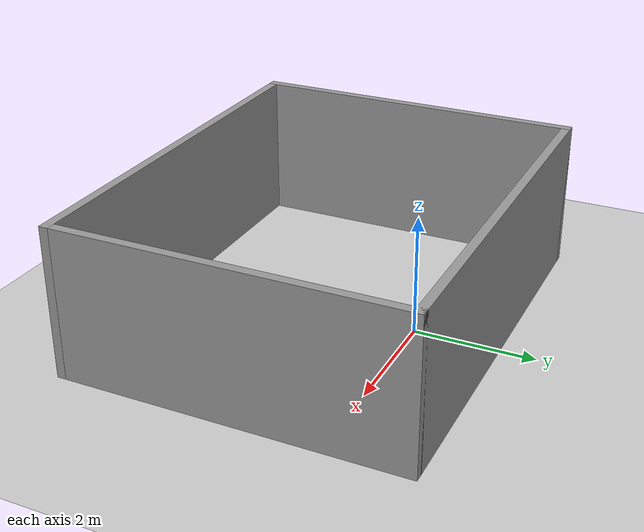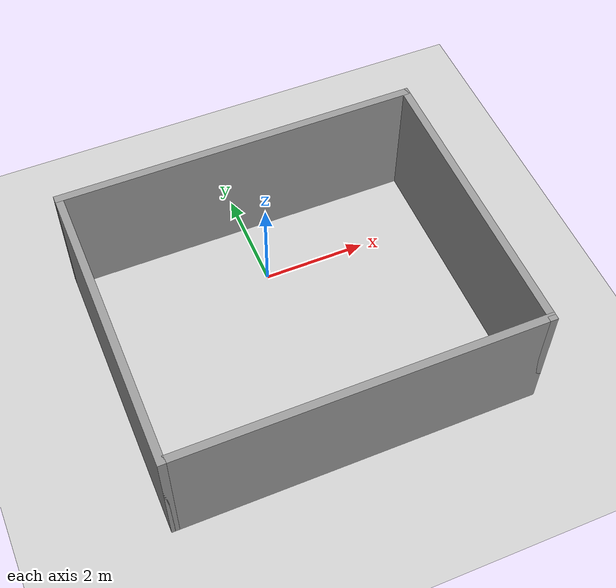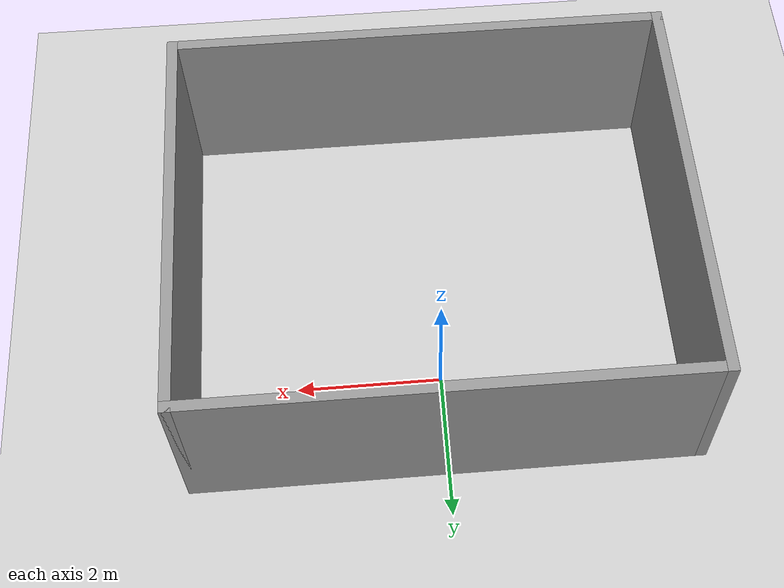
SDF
<?xml version="1.0"?>
<sdf version="1.5">
  <world name="default">
    <!-- Sun -->
    <include>
      <uri>model://sun</uri>
    </include>

    <!-- A ground plane -->
    <include>
      <uri>model://ground_plane</uri>
    </include>

    <!-- Stage 1 -->
    <include>
      <uri>model://stage2</uri>
      <name>stage2</name>
      <pose>0 0 0 0 0 0</pose>
    </include>

  </world>
</sdf>

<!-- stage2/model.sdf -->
<sdf version='1.7'>
  <model name='stage2'>
    <pose>1.605 -4.3325 0 0 -0 0</pose>
    <link name='Wall_0'>
      <collision name='Wall_0_Collision'>
        <geometry>
          <box>
            <size>5.75 0.15 2.5</size>
          </box>
        </geometry>
        <pose>0 0 1.25 0 -0 0</pose>
      </collision>
      <visual name='Wall_0_Visual'>
        <pose>0 0 1.25 0 -0 0</pose>
        <geometry>
          <box>
            <size>5.75 0.15 2.5</size>
          </box>
        </geometry>
        <material>
          <script>
            <uri>file://media/materials/scripts/gazebo.material</uri>
            <name>Gazebo/Grey</name>
          </script>
          <ambient>1 1 1 1</ambient>
        </material>
        <meta>
          <layer>0</layer>
        </meta>
      </visual>
      <pose>-3.425 -1.4575 0 0 -0 -1.5708</pose>
    </link>
    <link name='Wall_1'>
      <collision name='Wall_1_Collision'>
        <geometry>
          <box>
            <size>7 0.15 2.5</size>
          </box>
        </geometry>
        <pose>0 0 1.25 0 -0 0</pose>
      </collision>
      <visual name='Wall_1_Visual'>
        <pose>0 0 1.25 0 -0 0</pose>
        <geometry>
          <box>
            <size>7 0.15 2.5</size>
          </box>
        </geometry>
        <material>
          <script>
            <uri>file://media/materials/scripts/gazebo.material</uri>
            <name>Gazebo/Grey</name>
          </script>
          <ambient>1 1 1 1</ambient>
        </material>
        <meta>
          <layer>0</layer>
        </meta>
      </visual>
      <pose>0 -4.2575 0 0 -0 0</pose>
    </link>
    <link name='Wall_4'>
      <collision name='Wall_4_Collision'>
        <geometry>
          <box>
            <size>7 0.15 2.5</size>
          </box>
        </geometry>
        <pose>0 0 1.25 0 -0 0</pose>
      </collision>
      <visual name='Wall_4_Visual'>
        <pose>0 0 1.25 0 -0 0</pose>
        <geometry>
          <box>
            <size>7 0.15 2.5</size>
          </box>
        </geometry>
        <material>
          <script>
            <uri>file://media/materials/scripts/gazebo.material</uri>
            <name>Gazebo/Grey</name>
          </script>
          <ambient>1 1 1 1</ambient>
        </material>
        <meta>
          <layer>0</layer>
        </meta>
      </visual>
      <pose>0 1.3425 0 0 -0 0</pose>
    </link>
    <link name='Wall_5'>
      <collision name='Wall_5_Collision'>
        <geometry>
          <box>
            <size>5.75 0.15 2.5</size>
          </box>
        </geometry>
        <pose>0 0 1.25 0 -0 0</pose>
      </collision>
      <visual name='Wall_5_Visual'>
        <pose>0 0 1.25 0 -0 0</pose>
        <geometry>
          <box>
            <size>5.75 0.15 2.5</size>
          </box>
        </geometry>
        <material>
          <script>
            <uri>file://media/materials/scripts/gazebo.material</uri>
            <name>Gazebo/Grey</name>
          </script>
          <ambient>1 1 1 1</ambient>
        </material>
        <meta>
          <layer>0</layer>
        </meta>
      </visual>
      <pose>3.425 -1.4575 0 0 -0 -1.5708</pose>
    </link>
    <static>1</static>
  </model>
</sdf>
